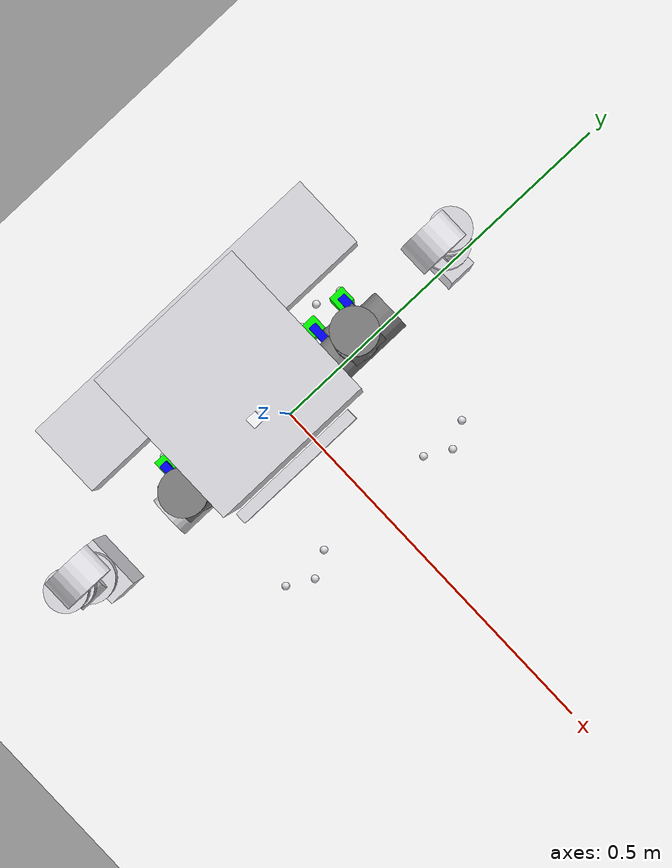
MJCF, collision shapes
<mujoco model="Q1_wo_hand">
  <compiler angle="radian" meshdir="../meshes/"/>
  <asset>
    <material name="blue_" rgba="0 0 1 0.6" />
    <material name="green" rgba="0 1 0 0.6" />
    <material name="red__" rgba="1 0 0 0.1" />
    <material name="white" rgba="1 1 1 0.8" />
    <material name="black" rgba="0 0 0 0.8" />
  </asset>
  <default>
    <joint damping="0.001" armature="0.01" frictionloss="0."/>
    <default class="collision">
      <geom group="0" rgba="0.2 0.7 0.2 1"/>
    </default>
    <geom condim='4' contype="1" conaffinity="15" solref='0.001 2' friction='1 0 0'/>
  </default>
  <asset>
    <mesh name="torso_link" file="torso_link.STL"/>
    <mesh name="L_shoulder_pitch_link" file="L_shoulder_pitch_link.STL"/>
    <mesh name="L_shoulder_roll_link" file="L_shoulder_roll_link.STL"/>
    <mesh name="L_shoulder_yaw_link" file="L_shoulder_yaw_link.STL"/>
    <mesh name="L_elbow_link" file="L_elbow_link.STL"/>
    <mesh name="L_forearm_yaw_link" file="L_forearm_yaw_link.STL"/>
    <mesh name="L_wrist_roll_link" file="L_wrist_roll_link.STL"/>
    <mesh name="L_wrist_pitch_link" file="L_wrist_pitch_link.STL"/>
    <mesh name="R_shoulder_pitch_link" file="R_shoulder_pitch_link.STL"/>
    <mesh name="R_shoulder_roll_link" file="R_shoulder_roll_link.STL"/>
    <mesh name="R_shoulder_yaw_link" file="R_shoulder_yaw_link.STL"/>
    <mesh name="R_elbow_link" file="R_elbow_link.STL"/>
    <mesh name="R_forearm_yaw_link" file="R_forearm_yaw_link.STL"/>
    <mesh name="R_wrist_roll_link" file="R_wrist_roll_link.STL"/>
    <mesh name="R_wrist_pitch_link" file="R_wrist_pitch_link.STL"/>
    <mesh name="pelvis_link" file="pelvis_link.STL"/>
    <mesh name="L_hip_roll_link" file="L_hip_roll_link.STL"/>
    <mesh name="L_hip_yaw_link" file="L_hip_yaw_link.STL"/>
    <mesh name="L_hip_pitch_link" file="L_hip_pitch_link.STL"/>
    <mesh name="L_knee_link" file="L_knee_link.STL"/>
    <mesh name="L_ankle_pitch_link" file="L_ankle_pitch_link.STL"/>
    <mesh name="L_ankle_roll_link" file="L_ankle_roll_link.STL"/>
    <mesh name="R_hip_roll_link" file="R_hip_roll_link.STL"/>
    <mesh name="R_hip_yaw_link" file="R_hip_yaw_link.STL"/>
    <mesh name="R_hip_pitch_link" file="R_hip_pitch_link.STL"/>
    <mesh name="R_knee_link" file="R_knee_link.STL"/>
    <mesh name="R_ankle_pitch_link" file="R_ankle_pitch_link.STL"/>
    <mesh name="R_ankle_roll_link" file="R_ankle_roll_link.STL"/>
    <mesh name="head_yaw_link" file="head_yaw_link.STL"/>
    <mesh name="head_pitch_link" file="head_pitch_link.STL"/>
  </asset>

  <worldbody>
    <body name="pelvis_link" pos="0 0 0.992">
      <inertial pos="-0.064791 1.1279e-05 -0.058899" quat="0.000833675 0.413396 -0.00112734 0.91055" mass="4.7279" diaginertia="0.0788429 0.050432 0.0400367"/>
      <joint name="floating_base_joint" type="free" limited="false" actuatorfrclimited="false"/>
      <geom type="mesh" contype="0" conaffinity="0" group="1" density="0" rgba="0.86667 0.86667 0.8902 1" mesh="pelvis_link"/>
      <geom size="0.04 0.175 0.05" pos="-0.1 0 -0.05" type="box" rgba="0.86667 0.86667 0.8902 1"/>
      <body name="L_hip_roll_link" pos="0 0.115 -0.063238">
        <inertial pos="-0.013997 2.5292e-05 0.0052806" quat="-0.000691995 0.737394 -0.00151007 0.67546" mass="1.2312" diaginertia="0.00232404 0.0018653 0.00124796"/>
        <joint name="L_hip_roll_joint" pos="0 0 0" axis="1 0 0" range="-0.0873 0.7854" actuatorfrcrange="-90 90"/>
        <geom type="mesh" contype="0" conaffinity="0" group="1" density="0" rgba="0.50196 0.50196 0.50196 1" mesh="L_hip_roll_link"/>
        <geom size="0.025 0.0085" type="cylinder" rgba="0.50196 0.50196 0.50196 1"/>
        <body name="L_hip_yaw_link">
          <inertial pos="-2.544e-05 -0.0008477 -0.11745" quat="0.70559 -0.00241823 0.00256523 0.708612" mass="3.6414" diaginertia="0.0673597 0.0646173 0.00869688"/>
          <joint name="L_hip_yaw_joint" pos="0 0 0" axis="0 0 1" range="-0.6981 0.6981" actuatorfrcrange="-60 60"/>
          <geom type="mesh" contype="0" conaffinity="0" group="1" density="0" rgba="0.50196 0.50196 0.50196 1" mesh="L_hip_yaw_link"/>
          <geom size="0.025 0.02" pos="-2.7849e-05 -0.0008477 -0.11745" quat="0.707107 0.707107 0 0" type="cylinder" rgba="0.50196 0.50196 0.50196 1"/>
          <body name="L_hip_pitch_link" pos="0 0 -0.14">
            <inertial pos="0.0098262 0.0015202 -0.12871" quat="0.999174 0.00018095 -0.0268118 -0.0305226" mass="1.9325" diaginertia="0.0639824 0.0627947 0.00843268"/>
            <joint name="L_hip_pitch_joint" pos="0 0 0" axis="0 1 0" range="-1.6581 0.8727" actuatorfrcrange="-330 330"/>
            <geom type="mesh" contype="0" conaffinity="0" group="1" density="0" rgba="0.50196 0.50196 0.50196 1" mesh="L_hip_pitch_link"/>
            <geom size="0.025 0.045" pos="0 0 -0.12" type="cylinder" rgba="0.50196 0.50196 0.50196 1"/>
            <body name="L_knee_link" pos="0 0 -0.284961">
              <inertial pos="0.0068853 0.0026634 -0.11128" quat="0.703442 -0.00935775 -0.0166865 0.710495" mass="5.9819" diaginertia="0.196956 0.193584 0.0122278"/>
              <joint name="L_knee_joint" pos="0 0 0" axis="0 1 0" range="-0.0873 2.3562" actuatorfrcrange="-330 330"/>
              <geom type="mesh" contype="0" conaffinity="0" group="1" density="0" rgba="0.50196 0.50196 0.50196 1" mesh="L_knee_link"/>
              <geom size="0.015 0.05" pos="0 0 -0.19" type="cylinder" rgba="0.50196 0.50196 0.50196 1"/>
              <geom size="0.015 0.05" pos="0 0 -0.35" type="cylinder" rgba="0.50196 0.50196 0.50196 1"/>
              <geom size="0.025 0.05" quat="0.707107 0.707107 0 0" type="cylinder" rgba="0.50196 0.50196 0.50196 1"/>

              <body name="L_Flange_A" pos="0 0 -0.166874" euler="0 0 0">
              <!-- pos 的 2.5 是d/2 -->
                  <geom type="box" size="0.026 .005 .01" pos="-0.026 0.023 0" euler="0 0 0" material="blue_" />
                  <!-- size的0.5是a/2 pos的-0.5是-a/2 1.2是b -->
                  <joint name="L_Flange_A_joint" group="2" pos="0 0 0" axis="0 1 0" range="-60 60" actuatorfrcrange="-200 200"/>
                  <body name="L_Rod_A" pos="-0.052 0.023 0" euler="0 0 0">
                  <!-- pos的-1是-a,1.2是b -->
                    <geom type="box" size="0.01 .01 0.071" pos="0. 0. -0.142" euler="0 0 0" material="green" />
                    <!-- size的2.5是d/2,pos的2.5是-d/2 -->
                    <joint name="L_Rod_A_joint" group="3" type="ball" pos="0 0 0"/>
                  </body>
              </body>
              <body name="L_Flange_B" pos="0 0 -0.225874" euler="0 0 0">
              <!-- pos 的 0.5 是c-d/2 -->
                  <geom type="box" size="0.026 .005 .01" pos="-0.026 -0.023 0" euler="0 0 0" material="blue_" />
                  <!-- size的0.5是a/2 pos的-0.5是-a/2 -1.2是-b -->
                  <joint name="L_Flange_B_joint" group="2" pos="0 0 0" axis="0 -1 0" range="-60 60" actuatorfrcrange="-200 200"/>
                  <body name="L_Rod_B" pos="-0.052 -0.023 0" euler="0 0 0">
                  <!-- pos的-1是-a,-1.2是-b -->
                    <geom type="box" size="0.01 .01 0.05625" pos="0. 0. -0.1125" euler="0 0 0" material="green" />
                    <!-- size的1.5是c/2,pos的1.5是-c/2 -->
                    <joint name="L_Rod_B_joint" group="3" type="ball" pos="0 0 0"/>
                  </body>
              </body>

              <body name="L_ankle_pitch_link" pos="0 0 -0.450874">
                <inertial pos="-2.0738e-09 -5.108e-05 -0.0029071" mass="0.049834" diaginertia="4.6e-06 4.3e-06 3.7e-06"/>
                <joint name="L_ankle_pitch_joint" group="1"  pos="0 0 0" axis="0 1 0" range="-0.4363 0.4363" actuatorfrcrange="-36 36"/>
                <geom type="mesh" contype="0" conaffinity="0" group="1" density="0" rgba="0.86667 0.86667 0.8902 1" mesh="L_ankle_pitch_link"/>
                <geom size="0.001 0.0005" type="cylinder" rgba="0.86667 0.86667 0.8902 1"/>
                <body name="L_ankle_roll_link">
                  <inertial pos="0.030805 0.00039115 -0.033202" quat="0.419269 0.575223 0.549388 0.437613" mass="1.2923" diaginertia="0.0083703 0.00793014 0.00192206"/>
                  <joint name="L_ankle_roll_joint" group="1"  pos="0 0 0" axis="1 0 0" range="-0.3491 0.3491" actuatorfrcrange="-36 36"/>
                  <geom type="mesh" contype="0" conaffinity="0" group="1" density="0" rgba="0.86667 0.86667 0.8902 1" mesh="L_ankle_roll_link"/>
                  <geom size="0.005" pos="-0.068 0.032 -0.047" rgba="0.86667 0.86667 0.8902 1"/>
                  <geom size="0.005" pos="-0.068 -0.032 -0.047" rgba="0.86667 0.86667 0.8902 1"/>
                  <geom size="0.005" pos="-0.076 0 -0.047" rgba="0.86667 0.86667 0.8902 1"/>
                  <geom size="0.005" pos="0.148 0.032 -0.047" rgba="0.86667 0.86667 0.8902 1"/>
                  <geom size="0.005" pos="0.148 -0.032 -0.047" rgba="0.86667 0.86667 0.8902 1"/>
                  <geom size="0.005" pos="0.166 0 -0.047" rgba="0.86667 0.86667 0.8902 1"/>
                </body>
              </body>
            </body>
          </body>
        </body>
      </body>
      <body name="R_hip_roll_link" pos="0 -0.115 -0.0632377">
        <inertial pos="-0.013997 2.5292e-05 0.0052806" quat="-0.000691995 0.737394 -0.00151007 0.67546" mass="1.2312" diaginertia="0.00232404 0.0018653 0.00124796"/>
        <joint name="R_hip_roll_joint" pos="0 0 0" axis="1 0 0" range="-0.7854 0.0873" actuatorfrcrange="-90 90"/>
        <geom type="mesh" contype="0" conaffinity="0" group="1" density="0" rgba="0.50196 0.50196 0.50196 1" mesh="R_hip_roll_link"/>
        <geom size="0.025 0.0085" type="cylinder" rgba="0.50196 0.50196 0.50196 1"/>
        <body name="R_hip_yaw_link">
          <inertial pos="2.544e-05 0.0008477 -0.11745" quat="0.70559 0.00241823 -0.00256523 0.708612" mass="3.6414" diaginertia="0.0673597 0.0646173 0.00869688"/>
          <joint name="R_hip_yaw_joint" pos="0 0 0" axis="0 0 1" range="-0.6981 0.6981" actuatorfrcrange="-60 60"/>
          <geom type="mesh" contype="0" conaffinity="0" group="1" density="0" rgba="0.50196 0.50196 0.50196 1" mesh="R_hip_yaw_link"/>
          <geom size="0.025 0.02" pos="-2.7849e-05 -0.0008477 -0.11745" quat="0.707107 0.707107 0 0" type="cylinder" rgba="0.50196 0.50196 0.50196 1"/>
          <body name="R_hip_pitch_link" pos="0 0 -0.14">
            <inertial pos="0.0097987 -0.0015623 -0.12869" quat="0.999186 -0.000218119 -0.0267876 0.0301667" mass="1.933" diaginertia="0.0639804 0.0627918 0.00843578"/>
            <joint name="R_hip_pitch_joint" pos="0 0 0" axis="0 1 0" range="-1.6581 0.8727" actuatorfrcrange="-330 330"/>
            <geom type="mesh" contype="0" conaffinity="0" group="1" density="0" rgba="0.50196 0.50196 0.50196 1" mesh="R_hip_pitch_link"/>
            <geom size="0.025 0.045" pos="0 0 -0.12" type="cylinder" rgba="0.50196 0.50196 0.50196 1"/>
            <body name="R_knee_link" pos="0 0 -0.284961">
              <inertial pos="0.0068833 -0.0026632 -0.11128" quat="0.710507 -0.0166857 -0.00935733 0.70343" mass="5.9828" diaginertia="0.196953 0.193582 0.0122286"/>
              <joint name="R_knee_joint" pos="0 0 0" axis="0 1 0" range="-0.0873 2.3562" actuatorfrcrange="-330 330"/>
              <geom type="mesh" contype="0" conaffinity="0" group="1" density="0" rgba="0.86667 0.86667 0.8902 1" mesh="R_knee_link"/>
              <geom size="0.015 0.05" pos="0 0 -0.19" type="cylinder" rgba="0.86667 0.86667 0.8902 1"/>
              <geom size="0.015 0.05" pos="0 0 -0.35" type="cylinder" rgba="0.86667 0.86667 0.8902 1"/>
              <geom size="0.025 0.05" quat="0.707107 0.707107 0 0" type="cylinder" rgba="0.86667 0.86667 0.8902 1"/>

              <body name="R_Flange_A" pos="0 0 -0.166874" euler="0 0 0">
              <!-- pos 的 2.5 是d/2 -->
                  <geom type="box" size="0.026 .005 .01" pos="-0.026 -0.023 0" euler="0 0 0" material="blue_" />
                  <!-- size的0.5是a/2 pos的-0.5是-a/2 1.2是b -->
                  <joint name="R_Flange_A_joint" group="2" pos="0 0 0" axis="0 -1 0" range="-60 60" actuatorfrcrange="-200 200"/>
                  <body name="R_Rod_A" pos="-0.052 -0.023 0" euler="0 0 0">
                  <!-- pos的-1是-a,1.2是b -->
                    <geom type="box" size="0.01 .01 0.071" pos="0. 0. -0.142" euler="0 0 0" material="green" />
                    <!-- size的2.5是d/2,pos的2.5是-d/2 -->
                    <joint name="R_Rod_A_joint" group="3" type="ball" pos="0 0 0"/>
                  </body>
              </body>
              <body name="R_Flange_B" pos="0 0 -0.225874" euler="0 0 0">
              <!-- pos 的 0.5 是c-d/2 -->
                  <geom type="box" size="0.026 .005 .01" pos="-0.026 0.023 0" euler="0 0 0" material="blue_" />
                  <!-- size的0.5是a/2 pos的-0.5是-a/2 -1.2是-b -->
                  <joint name="R_Flange_B_joint" group="2" pos="0 0 0" axis="0 1 0" range="-60 60" actuatorfrcrange="-200 200"/>
                  <body name="R_Rod_B" pos="-0.052 0.023 0" euler="0 0 0">
                  <!-- pos的-1是-a,-1.2是-b -->
                    <geom type="box" size="0.01 .01 0.05625" pos="0. 0. -0.1125" euler="0 0 0" material="green" />
                    <!-- size的1.5是c/2,pos的1.5是-c/2 -->
                    <joint name="R_Rod_B_joint" group="3" type="ball" pos="0 0 0"/>
                  </body>
              </body>
              <body name="R_ankle_pitch_link" pos="0 0 -0.450874">
                <inertial pos="-2.0735e-09 -5.1055e-05 -0.0029071" mass="0.049834" diaginertia="4.6e-06 4.3e-06 3.7e-06"/>
                <joint name="R_ankle_pitch_joint" group="1" pos="0 0 0" axis="0 1 0" range="-0.4363 0.4363" actuatorfrcrange="-36 36"/>
                <geom type="mesh" contype="0" conaffinity="0" group="1" density="0" rgba="0.86667 0.86667 0.8902 1" mesh="R_ankle_pitch_link"/>
                <geom size="0.02 0.0005" type="cylinder" rgba="0.86667 0.86667 0.8902 1"/>
                <body name="R_ankle_roll_link">
                  <inertial pos="0.030805 -0.00039115 -0.033202" quat="0.437613 0.549388 0.575223 0.419269" mass="1.2923" diaginertia="0.0083703 0.00793014 0.00192206"/>
                  <joint name="R_ankle_roll_joint" group="1" pos="0 0 0" axis="1 0 0" range="-0.3491 0.3491" actuatorfrcrange="-36 36"/>
                  <geom type="box" size=".005 0.0115 .005" pos="-0.052 0 0" euler="0 0 0" material="black" />
                  <geom type="mesh" contype="0" conaffinity="0" group="1" density="0" rgba="0.86667 0.86667 0.8902 1" mesh="R_ankle_roll_link"/>
                  <geom size="0.005" pos="-0.068 0.032 -0.047" rgba="0.86667 0.86667 0.8902 1"/>
                  <geom size="0.005" pos="-0.068 -0.032 -0.047" rgba="0.86667 0.86667 0.8902 1"/>
                  <geom size="0.005" pos="-0.076 0 -0.047" rgba="0.86667 0.86667 0.8902 1"/>
                  <geom size="0.005" pos="0.148 0.032 -0.047" rgba="0.86667 0.86667 0.8902 1"/>
                  <geom size="0.005" pos="0.148 -0.032 -0.047" rgba="0.86667 0.86667 0.8902 1"/>
                  <geom size="0.005" pos="0.166 0 -0.047" rgba="0.86667 0.86667 0.8902 1"/>
                </body>
              </body>
            </body>
          </body>
        </body>
      </body>
      <body name="torso_link">
        <inertial pos="0.00032429 -1.7661e-09 0.24794" quat="0.707106 0.000818852 0.000818852 0.707106" mass="11.901" diaginertia="0.953547 0.948549 0.0879486"/>
        <joint name="pelvis_joint" pos="0 0 0" axis="0 0 1" range="-1.0472 1.0472" actuatorfrcrange="-42 42"/>
        <geom type="mesh" contype="0" conaffinity="0" group="1" density="0" rgba="0.86667 0.86667 0.8902 1" mesh="torso_link"/>
        <geom size="0.08 0.08 0.2" pos="-0.03 0 0.25" type="box" rgba="0.86667 0.86667 0.8902 1"/>
        <site name="imu" size="0.01" pos="0 0.03 0.2"/>
        <body name="L_shoulder_pitch_link" pos="0 0.21225 0.37678" quat="0.991445 0.130526 0 0">
          <inertial pos="-0.0033471 -0.010926 -7.636e-07" quat="0.706924 0.707289 -0.000180045 -0.000179952" mass="1.5246" diaginertia="0.0025356 0.0023295 0.0015535"/>
          <joint name="L_shoulder_pitch_joint" pos="0 0 0" axis="0 1 0" range="-1.57 1.57" actuatorfrcrange="-42 42"/>
          <geom type="mesh" contype="0" conaffinity="0" group="1" density="0" rgba="0.86667 0.86667 0.8902 1" mesh="L_shoulder_pitch_link"/>
          <geom size="0.025 0.015" quat="0.5 0.5 0.5 0.5" type="cylinder" rgba="0.86667 0.86667 0.8902 1"/>
          <body name="L_shoulder_roll_link">
            <inertial pos="-0.0032498 0.0010589 -0.057651" quat="0.706828 -0.00108728 -0.00288504 0.707379" mass="0.75024" diaginertia="0.00522592 0.00477811 0.00141307"/>
            <joint name="L_shoulder_roll_joint" pos="0 0 0" axis="1 0 0" range="-0.785 0.785" actuatorfrcrange="-42 42"/>
            <geom quat="0.991445 -0.130526 0 0" type="mesh" contype="0" conaffinity="0" group="1" density="0" rgba="0.86667 0.86667 0.8902 1" mesh="L_shoulder_roll_link"/>
            <geom size="0.02 0.015" pos="0 -0.001 -0.09" quat="0.991445 -0.130526 0 0" type="cylinder" rgba="0.86667 0.86667 0.8902 1"/>
            <body name="L_shoulder_yaw_link" pos="0 -0.0432083 -0.250419" quat="0.991445 -0.130526 0 0">
              <inertial pos="-0.0031666 -0.00082346 0.048205" quat="0.999989 0.00441892 -0.000148879 -0.00152011" mass="1.8717" diaginertia="0.0100457 0.00995455 0.00168245"/>
              <joint name="L_shoulder_yaw_joint" pos="0 0 0" axis="0 0 1" range="-1.54 0" actuatorfrcrange="-23 23"/>
              <geom quat="0.707107 0 0 0.707107" type="mesh" contype="0" conaffinity="0" group="1" density="0" rgba="0.86667 0.86667 0.8902 1" mesh="L_shoulder_yaw_link"/>
              <geom size="0.02 0.015" pos="0 0 0.08" type="cylinder" rgba="0.86667 0.86667 0.8902 1"/>
              <body name="L_elbow_link">
                <inertial pos="-0.0053122 -0.0014683 -0.023336" quat="0.697469 -0.115004 -0.0819169 0.702567" mass="0.40014" diaginertia="0.00102546 0.00072796 0.000681177"/>
                <joint name="L_elbow_joint" pos="0 0 0" axis="0 1 0" range="-2 0" actuatorfrcrange="-23 23"/>
                <geom quat="0.707107 0 0 0.707107" type="mesh" contype="0" conaffinity="0" group="1" density="0" rgba="0.86667 0.86667 0.8902 1" mesh="L_elbow_link"/>
                <geom size="0.02 0.015" quat="0.5 -0.5 0.5 0.5" type="cylinder" rgba="0.86667 0.86667 0.8902 1"/>
                <body name="L_forearm_yaw_link" pos="0 0 -0.211">
                  <inertial pos="-0.0023649 -0.00022152 0.092372" quat="0.711462 -0.00430298 -0.00615597 0.702684" mass="1.0984" diaginertia="0.0112978 0.0111616 0.000786758"/>
                  <joint name="L_forearm_yaw_joint" pos="0 0 0" axis="0 0 1" range="-1.57 1.57" actuatorfrcrange="-8.3 8.3"/>
                  <geom type="mesh" contype="0" conaffinity="0" group="1" density="0" rgba="0.86667 0.86667 0.8902 1" mesh="L_forearm_yaw_link"/>
                  <geom size="0.025 0.015" pos="0 0 0.082" type="cylinder" rgba="0.86667 0.86667 0.8902 1"/>
                  <body name="L_wrist_roll_link">
                    <inertial pos="-0.0021241 -0.0018773 -1.0306e-05" quat="0.458208 0.538559 -0.458208 0.538559" mass="0.28008" diaginertia="0.0001214 9.43162e-05 9.36838e-05"/>
                    <joint name="L_wrist_roll_joint" pos="0 0 0" axis="1 0 0" range="-0.785 0.785" actuatorfrcrange="-3.3 3.3"/>
                    <geom type="mesh" contype="0" conaffinity="0" group="1" density="0" rgba="0.86667 0.86667 0.8902 1" mesh="L_wrist_roll_link"/>
                    <geom size="0.015 0.005" quat="0.707107 0 0.707107 0" type="cylinder" rgba="0.86667 0.86667 0.8902 1"/>
                    <body name="L_wrist_pitch_link">
                      <inertial pos="-5.305e-05 0.0098724 -0.045434" quat="0.999437 0.03342 0.000542139 0.00301705" mass="0.18029" diaginertia="0.000564702 0.000521453 8.33443e-05"/>
                      <joint name="L_wrist_pitch_joint" pos="0 0 0" axis="0 1 0" range="-0.785 0.785" actuatorfrcrange="-3.3 3.3"/>
                      <geom type="mesh" contype="0" conaffinity="0" group="1" density="0" rgba="0.86667 0.86667 0.8902 1" mesh="L_wrist_pitch_link"/>
                      <geom size="0.03 0.015 0.09" pos="0 0 -0.16" type="box" rgba="0.86667 0.86667 0.8902 1"/>
                    </body>
                  </body>
                </body>
              </body>
            </body>
          </body>
        </body>
        <body name="R_shoulder_pitch_link" pos="0 -0.21032 0.37626" quat="0.991445 -0.130526 0 0">
          <inertial pos="-0.0033471 0.010926 8.5463e-07" quat="0.706924 0.707289 0.000180045 0.000179952" mass="1.5246" diaginertia="0.0025356 0.0023295 0.0015535"/>
          <joint name="R_shoulder_pitch_joint" pos="0 0 0" axis="0 1 0" range="-1.57 1.57" actuatorfrcrange="-42 42"/>
          <geom type="mesh" contype="0" conaffinity="0" group="1" density="0" rgba="0.86667 0.86667 0.8902 1" mesh="R_shoulder_pitch_link"/>
          <geom size="0.025 0.015" quat="0.5 0.5 0.5 0.5" type="cylinder" rgba="0.86667 0.86667 0.8902 1"/>
          <body name="R_shoulder_roll_link">
            <inertial pos="-0.0032503 -0.0010648 -0.057652" quat="0.707377 -0.00292192 -0.00105007 0.70683" mass="0.7503" diaginertia="0.00522613 0.00477841 0.00141307"/>
            <joint name="R_shoulder_roll_joint" pos="0 0 0" axis="1 0 0" range="-0.785 0.785" actuatorfrcrange="-42 42"/>
            <geom quat="0.991445 0.130526 0 0" type="mesh" contype="0" conaffinity="0" group="1" density="0" rgba="0.86667 0.86667 0.8902 1" mesh="R_shoulder_roll_link"/>
            <geom size="0.02 0.015" pos="0 0.001 -0.09" quat="0.991445 0.130526 0 0" type="cylinder" rgba="0.86667 0.86667 0.8902 1"/>
            <body name="R_shoulder_yaw_link" pos="0 0.0432083 -0.250419" quat="0.991445 0.130526 0 0">
              <inertial pos="-0.0031672 0.0008245 0.048203" quat="0.999989 -0.00441881 -0.000148864 0.00152345" mass="1.8717" diaginertia="0.0100455 0.00995455 0.00168225"/>
              <joint name="R_shoulder_yaw_joint" pos="0 0 0" axis="0 0 1" range="0 1.57" actuatorfrcrange="-23 23"/>
              <geom quat="0.707107 0 0 -0.707107" type="mesh" contype="0" conaffinity="0" group="1" density="0" rgba="0.86667 0.86667 0.8902 1" mesh="R_shoulder_yaw_link"/>
              <geom size="0.02 0.015" pos="0 0 0.08" type="cylinder" rgba="0.86667 0.86667 0.8902 1"/>
              <body name="R_elbow_link">
                <inertial pos="-0.0053294 0.0014694 -0.023329" quat="0.702635 -0.0801268 -0.11307 0.697925" mass="0.39998" diaginertia="0.00102515 0.000727706 0.000681241"/>
                <joint name="R_elbow_joint" pos="0 0 0" axis="0 1 0" range="-2 0" actuatorfrcrange="-23 23"/>
                <geom quat="0.707107 0 0 -0.707107" type="mesh" contype="0" conaffinity="0" group="1" density="0" rgba="0.86667 0.86667 0.8902 1" mesh="R_elbow_link"/>
                <geom size="0.02 0.015" quat="0.5 -0.5 0.5 0.5" type="cylinder" rgba="0.86667 0.86667 0.8902 1"/>
                <body name="R_forearm_yaw_link" pos="0 0 -0.211">
                  <inertial pos="-0.0023649 -0.00022152 0.092372" quat="0.711462 -0.00430298 -0.00615597 0.702684" mass="1.0984" diaginertia="0.0112978 0.0111616 0.000786758"/>
                  <joint name="R_forearm_yaw_joint" pos="0 0 0" axis="0 0 1" range="-1.57 1.57" actuatorfrcrange="-8.3 8.3"/>
                  <geom type="mesh" contype="0" conaffinity="0" group="1" density="0" rgba="0.86667 0.86667 0.8902 1" mesh="R_forearm_yaw_link"/>
                  <geom size="0.025 0.015" pos="0 0 0.082" type="cylinder" rgba="0.86667 0.86667 0.8902 1"/>
                  <body name="R_wrist_roll_link">
                    <inertial pos="-0.0021241 0.0018773 1.0306e-05" quat="0.538559 0.458208 -0.538559 0.458208" mass="0.28008" diaginertia="0.0001214 9.43162e-05 9.36838e-05"/>
                    <joint name="R_wrist_roll_joint" pos="0 0 0" axis="1 0 0" range="-0.785 0.785" actuatorfrcrange="-3.3 3.3"/>
                    <geom type="mesh" contype="0" conaffinity="0" group="1" density="0" rgba="0.86667 0.86667 0.8902 1" mesh="R_wrist_roll_link"/>
                    <geom size="0.015 0.005" quat="0.707107 0 0.707107 0" type="cylinder" rgba="0.86667 0.86667 0.8902 1"/>
                    <body name="R_wrist_pitch_link">
                      <inertial pos="5.305e-05 -0.0098724 -0.045434" quat="0.999437 -0.03342 -0.000542139 0.00301705" mass="0.18029" diaginertia="0.000564702 0.000521453 8.33443e-05"/>
                      <joint name="R_wrist_pitch_joint" pos="0 0 0" axis="0 1 0" range="-0.785 0.785" actuatorfrcrange="-3.3 3.3"/>
                      <geom type="mesh" contype="0" conaffinity="0" group="1" density="0" rgba="0.86667 0.86667 0.8902 1" mesh="R_wrist_pitch_link"/>
                      <geom size="0.03 0.015 0.09" pos="0 0 -0.16" type="box" rgba="0.86667 0.86667 0.8902 1"/>
                    </body>
                  </body>
                </body>
              </body>
            </body>
          </body>
        </body>
        <body name="head_yaw_link" pos="0.012 0 0.63">
          <inertial pos="0 0 -0.0129943" quat="0.707107 0.707107 0 0" mass="0.6" diaginertia="0.0026992 0.0026208 0.000674"/>
          <joint name="head_yaw_joint" pos="0 0 0" axis="0 0 1" range="-1.57 1.57" actuatorfrcrange="-2.52 2.52"/>
          <geom type="mesh" contype="0" conaffinity="0" group="1" density="0" rgba="1 1 1 1" mesh="head_yaw_link"/>
          <geom size="0.005 0.005 0.005" type="box" rgba="1 1 1 1"/>
          <body name="head_pitch_link">
            <inertial pos="0.065515 0.00075181 0.019016" quat="0.590383 0.405861 0.390143 0.578371" mass="0.3008" diaginertia="0.00251325 0.00222218 0.00129937"/>
            <joint name="head_pitch_joint" pos="0 0 0" axis="0 1 0" range="-0.785 0.157" actuatorfrcrange="-1.26 1.26"/>
            <geom type="mesh" contype="0" conaffinity="0" group="1" density="0" rgba="0.86667 0.86667 0.8902 1" mesh="head_pitch_link"/>
            <geom size="0.005 0.06 0.06" pos="0.05 0 0" type="box" rgba="0.86667 0.86667 0.8902 1"/>
          </body>
        </body>
      </body>
    </body>
  </worldbody>

  <actuator>
    <motor name="L_hip_roll_joint" joint="L_hip_roll_joint" ctrlrange="-90 90"/>
    <motor name="L_hip_yaw_joint" joint="L_hip_yaw_joint" ctrlrange="-60 60"/>
    <motor name="L_hip_pitch_joint" joint="L_hip_pitch_joint" ctrlrange="-330 330"/>
    <motor name="L_knee_joint" joint="L_knee_joint" ctrlrange="-330 330"/>
    <motor joint="L_Flange_A_joint" name="L_Flange_A_joint" ctrlrange="-36 36" ctrllimited="true"/>
    <motor joint="L_Flange_B_joint" name="L_Flange_B_joint" ctrlrange="-36 36" ctrllimited="true"/>

    <motor name="R_hip_roll_joint" joint="R_hip_roll_joint" ctrlrange="-90 90"/>
    <motor name="R_hip_yaw_joint" joint="R_hip_yaw_joint" ctrlrange="-60 60"/>
    <motor name="R_hip_pitch_joint" joint="R_hip_pitch_joint" ctrlrange="-330 330"/>
    <motor name="R_knee_joint" joint="R_knee_joint" ctrlrange="-330 330"/>
    <motor joint="R_Flange_A_joint" name="R_Flange_A_joint" ctrlrange="-36 36" ctrllimited="true"/>
    <motor joint="R_Flange_B_joint" name="R_Flange_B_joint" ctrlrange="-36 36" ctrllimited="true"/>

    <motor name="pelvis_joint" joint="pelvis_joint" ctrlrange="-42 42"/>

    <motor name="L_shoulder_pitch_joint" joint="L_shoulder_pitch_joint" ctrlrange="-42 42"/>
    <motor name="L_shoulder_roll_joint" joint="L_shoulder_roll_joint" ctrlrange="-42 42"/>
    <motor name="L_shoulder_yaw_joint" joint="L_shoulder_yaw_joint" ctrlrange="-23 23"/>
    <motor name="L_elbow_joint" joint="L_elbow_joint" ctrlrange="-23 23"/>
    <motor name="L_forearm_yaw_joint" joint="L_forearm_yaw_joint" ctrlrange="-8.3 8.3"/>
    <motor name="L_wrist_roll_joint" joint="L_wrist_roll_joint" ctrlrange="-3.3 3.3"/>
    <motor name="L_wrist_pitch_joint" joint="L_wrist_pitch_joint" ctrlrange="-3.3 3.3"/>

    <motor name="R_shoulder_pitch_joint" joint="R_shoulder_pitch_joint" ctrlrange="-42 42"/>
    <motor name="R_shoulder_roll_joint" joint="R_shoulder_roll_joint" ctrlrange="-42 42"/>
    <motor name="R_shoulder_yaw_joint" joint="R_shoulder_yaw_joint" ctrlrange="-23 23"/>
    <motor name="R_elbow_joint" joint="R_elbow_joint" ctrlrange="-23 23"/>
    <motor name="R_forearm_yaw_joint" joint="R_forearm_yaw_joint" ctrlrange="-8.3 8.3"/>
    <motor name="R_wrist_roll_joint" joint="R_wrist_roll_joint" ctrlrange="-3.3 3.3"/>
    <motor name="R_wrist_pitch_joint" joint="R_wrist_pitch_joint" ctrlrange="-3.3 3.3"/>

    <motor name="head_yaw_joint" joint="head_yaw_joint" ctrlrange="-2.52 2.52"/>
    <motor name="head_pitch_joint" joint="head_pitch_joint" ctrlrange="-1.26 1.26"/>
  </actuator>
  <equality>
    <connect name="L_Ankle_roll_Rod_A" active="true" body1="L_ankle_roll_link" body2="L_Rod_A" anchor="-0.052 0.023 0" />
    <connect name="L_Ankle_roll_Rod_B" active="true" body1="L_ankle_roll_link" body2="L_Rod_B" anchor="-0.052 -0.023 0" />

    <connect name="R_Ankle_roll_Rod_A" active="true" body1="R_ankle_roll_link" body2="R_Rod_A" anchor="-0.052 -0.023 0" />
    <connect name="R_Ankle_roll_Rod_B" active="true" body1="R_ankle_roll_link" body2="R_Rod_B" anchor="-0.052 0.023 0" />
  </equality>
  <sensor>
    <gyro name="imu-angular-velocity" site="imu" noise="5e-4" cutoff="34.9"/>
    <accelerometer name="imu-linear-acceleration" site="imu" noise="1e-2" cutoff="157"/>
  </sensor>
<!-- setup scene -->
  <statistic center="1.0 0.7 1.0" extent="0.8" />
  <visual>
    <headlight diffuse="0.6 0.6 0.6" ambient="0.1 0.1 0.1" specular="0.9 0.9 0.9" />
    <rgba haze="0.15 0.25 0.35 1" />
    <global azimuth="-140" elevation="-20" offwidth="2080" offheight="1170" />
  </visual>
  <asset>
    <texture type="skybox" builtin="gradient" rgb1="1 1 1" rgb2="1 1 1" width="800" height="800" />
    <texture type="2d" name="groundplane" builtin="checker" mark="edge" rgb1="1 1 1" rgb2="1 1 1" markrgb="0 0 0" width="300" height="300" />
    <material name="groundplane" texture="groundplane" texuniform="true" texrepeat="5 5" reflectance="0" />
    <texture type="skybox" builtin="gradient" rgb1=".4 .5 .6" rgb2="0 0 0" width="100" height="100" />
    <texture builtin="flat" height="1278" mark="cross" markrgb="1 1 1" name="texgeom" random="0.01" rgb1="0.8 0.6 0.4" rgb2="0.8 0.6 0.4" type="cube" width="127" />
    <texture name="texplane" builtin="checker" height="512" width="512" rgb1=".2 .3 .4" rgb2=".1 .15 .2" type="2d" />
    <material name="MatPlane" reflectance="0.5" shininess="0.01" specular="0.1" texrepeat="1 1" texture="texplane" texuniform="true" />
    <material name="geom" texture="texgeom" texuniform="true" />
  </asset>
  <worldbody>
    <geom name="floor" size="0 0 0.01" type="plane" material="groundplane" contype="1" conaffinity="0" priority="1" friction="0.6" condim="3" />
    <light diffuse=".5 .5 .5" pos="-3 -3 5" dir="3 3 -5" castshadow="true" />
  </worldbody>
</mujoco>
